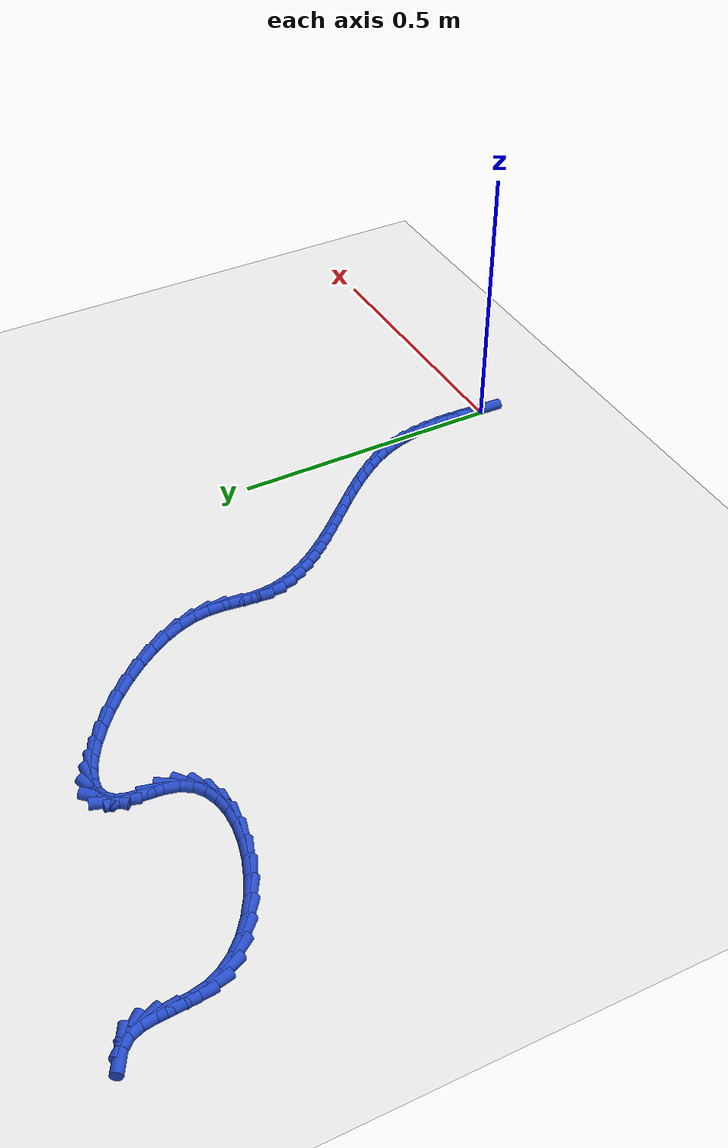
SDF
<sdf version="1.6">
 <world name="default">
  <model name="ground_plane">
   <static>1</static>
   <link name="link">
    <collision name="collision">
     <geometry><plane><normal>0 0 1</normal><size>100 100</size></plane></geometry>
     <surface><friction><ode><mu>100</mu><mu2>50</mu2></ode></friction></surface>
    </collision>
    <visual name="visual">
     <cast_shadows>0</cast_shadows>
     <geometry><plane><normal>0 0 1</normal><size>100 100</size></plane></geometry>
     <material>
      <script><uri>file://media/materials/scripts/gazebo.material</uri><name>Gazebo/WhiteGlow</name></script>
     </material>
    </visual>
   </link>
  </model>
  <model name="line">
   <link name="link_1">
    <pose>0.0008602382238164219 0.026881069521772712 0.01 0 1.57 1.555280281965907</pose>
    <collision name="collision">
     <geometry><cylinder><radius>0.01</radius><length>0.08</length></cylinder></geometry>
    </collision>
    <visual name="visual">
     <material>
      <script><name>Gazebo/Blue</name><uri>file://media/materials/scripts/gazebo.material</uri></script>
     </material>
     <geometry><cylinder><radius>0.01</radius><length>0.08</length></cylinder></geometry>
    </visual>
   </link>
   <link name="link_2">
    <pose>0.0012765417662471824 0.05370943580001605 0.01 0 1.57 -1.5594066172251986</pose>
    <collision name="collision">
     <geometry><cylinder><radius>0.01</radius><length>0.08</length></cylinder></geometry>
    </collision>
    <visual name="visual">
     <material>
      <script><name>Gazebo/Blue</name><uri>file://media/materials/scripts/gazebo.material</uri></script>
     </material>
     <geometry><cylinder><radius>0.01</radius><length>0.08</length></cylinder></geometry>
    </visual>
   </link>
   <link name="link_3">
    <pose>0.0009725065992423122 0.08040212870797271 0.01 0 1.57 -1.5217017346855326</pose>
    <collision name="collision">
     <geometry><cylinder><radius>0.01</radius><length>0.08</length></cylinder></geometry>
    </collision>
    <visual name="visual">
     <material>
      <script><name>Gazebo/Blue</name><uri>file://media/materials/scripts/gazebo.material</uri></script>
     </material>
     <geometry><cylinder><radius>0.01</radius><length>0.08</length></cylinder></geometry>
    </visual>
   </link>
   <link name="link_4">
    <pose>-0.00032827130524816115 0.10687617811888533 0.01 0 1.57 -1.4727666887338848</pose>
    <collision name="collision">
     <geometry><cylinder><radius>0.01</radius><length>0.08</length></cylinder></geometry>
    </collision>
    <visual name="visual">
     <material>
      <script><name>Gazebo/Blue</name><uri>file://media/materials/scripts/gazebo.material</uri></script>
     </material>
     <geometry><cylinder><radius>0.01</radius><length>0.08</length></cylinder></geometry>
    </visual>
   </link>
   <link name="link_5">
    <pose>-0.0029021959752742127 0.13304861390599657 0.01 0 1.57 -1.4122386485645877</pose>
    <collision name="collision">
     <geometry><cylinder><radius>0.01</radius><length>0.08</length></cylinder></geometry>
    </collision>
    <visual name="visual">
     <material>
      <script><name>Gazebo/Blue</name><uri>file://media/materials/scripts/gazebo.material</uri></script>
     </material>
     <geometry><cylinder><radius>0.01</radius><length>0.08</length></cylinder></geometry>
    </visual>
   </link>
   <link name="link_6">
    <pose>-0.007025671438885812 0.1588364659425492 0.01 0 1.57 -1.3400157972310693</pose>
    <collision name="collision">
     <geometry><cylinder><radius>0.01</radius><length>0.08</length></cylinder></geometry>
    </collision>
    <visual name="visual">
     <material>
      <script><name>Gazebo/Blue</name><uri>file://media/materials/scripts/gazebo.material</uri></script>
     </material>
     <geometry><cylinder><radius>0.01</radius><length>0.08</length></cylinder></geometry>
    </visual>
   </link>
   <link name="link_7">
    <pose>-0.012975101724132937 0.18415676410178572 0.01 0 1.57 -1.2565055473029294</pose>
    <collision name="collision">
     <geometry><cylinder><radius>0.01</radius><length>0.08</length></cylinder></geometry>
    </collision>
    <visual name="visual">
     <material>
      <script><name>Gazebo/Blue</name><uri>file://media/materials/scripts/gazebo.material</uri></script>
     </material>
     <geometry><cylinder><radius>0.01</radius><length>0.08</length></cylinder></geometry>
    </visual>
   </link>
   <link name="link_8">
    <pose>-0.02102689085906555 0.2089265382569489 0.01 0 1.57 -1.1645421362590962</pose>
    <collision name="collision">
     <geometry><cylinder><radius>0.01</radius><length>0.08</length></cylinder></geometry>
    </collision>
    <visual name="visual">
     <material>
      <script><name>Gazebo/Blue</name><uri>file://media/materials/scripts/gazebo.material</uri></script>
     </material>
     <geometry><cylinder><radius>0.01</radius><length>0.08</length></cylinder></geometry>
    </visual>
   </link>
   <link name="link_9">
    <pose>-0.03141463552067935 0.23307369433146488 0.01 0 1.57 -1.0798703875557212</pose>
    <collision name="collision">
     <geometry><cylinder><radius>0.01</radius><length>0.08</length></cylinder></geometry>
    </collision>
    <visual name="visual">
     <material>
      <script><name>Gazebo/Blue</name><uri>file://media/materials/scripts/gazebo.material</uri></script>
     </material>
     <geometry><cylinder><radius>0.01</radius><length>0.08</length></cylinder></geometry>
    </visual>
   </link>
   <link name="link_10">
    <pose>-0.044002037707681595 0.2566201172730296 0.01 0 1.57 -1.0098060208252468</pose>
    <collision name="collision">
     <geometry><cylinder><radius>0.01</radius><length>0.08</length></cylinder></geometry>
    </collision>
    <visual name="visual">
     <material>
      <script><name>Gazebo/Blue</name><uri>file://media/materials/scripts/gazebo.material</uri></script>
     </material>
     <geometry><cylinder><radius>0.01</radius><length>0.08</length></cylinder></geometry>
    </visual>
   </link>
   <link name="link_11">
    <pose>-0.05846347635207173 0.27963579328119625 0.01 0 1.57 -0.9535656398321232</pose>
    <collision name="collision">
     <geometry><cylinder><radius>0.01</radius><length>0.08</length></cylinder></geometry>
    </collision>
    <visual name="visual">
     <material>
      <script><name>Gazebo/Blue</name><uri>file://media/materials/scripts/gazebo.material</uri></script>
     </material>
     <geometry><cylinder><radius>0.01</radius><length>0.08</length></cylinder></geometry>
    </visual>
   </link>
   <link name="link_12">
    <pose>-0.07447179924027313 0.3021910975731917 0.01 0 1.57 -0.9100801353350306</pose>
    <collision name="collision">
     <geometry><cylinder><radius>0.01</radius><length>0.08</length></cylinder></geometry>
    </collision>
    <visual name="visual">
     <material>
      <script><name>Gazebo/Blue</name><uri>file://media/materials/scripts/gazebo.material</uri></script>
     </material>
     <geometry><cylinder><radius>0.01</radius><length>0.08</length></cylinder></geometry>
    </visual>
   </link>
   <link name="link_13">
    <pose>-0.09169985415870918 0.3243564053662428 0.01 0 1.57 -0.8783344374496111</pose>
    <collision name="collision">
     <geometry><cylinder><radius>0.01</radius><length>0.08</length></cylinder></geometry>
    </collision>
    <visual name="visual">
     <material>
      <script><name>Gazebo/Blue</name><uri>file://media/materials/scripts/gazebo.material</uri></script>
     </material>
     <geometry><cylinder><radius>0.01</radius><length>0.08</length></cylinder></geometry>
    </visual>
   </link>
   <link name="link_14">
    <pose>-0.10982048889380337 0.3462020918775764 0.01 0 1.57 -0.8575220311940084</pose>
    <collision name="collision">
     <geometry><cylinder><radius>0.01</radius><length>0.08</length></cylinder></geometry>
    </collision>
    <visual name="visual">
     <material>
      <script><name>Gazebo/Blue</name><uri>file://media/materials/scripts/gazebo.material</uri></script>
     </material>
     <geometry><cylinder><radius>0.01</radius><length>0.08</length></cylinder></geometry>
    </visual>
   </link>
   <link name="link_15">
    <pose>-0.12850655123197896 0.3677985323244192 0.01 0 1.57 -0.8471221855984722</pose>
    <collision name="collision">
     <geometry><cylinder><radius>0.01</radius><length>0.08</length></cylinder></geometry>
    </collision>
    <visual name="visual">
     <material>
      <script><name>Gazebo/Blue</name><uri>file://media/materials/scripts/gazebo.material</uri></script>
     </material>
     <geometry><cylinder><radius>0.01</radius><length>0.08</length></cylinder></geometry>
    </visual>
   </link>
   <link name="link_16">
    <pose>-0.14743088895965947 0.3892161019239984 0.01 0 1.57 -0.8469380375574095</pose>
    <collision name="collision">
     <geometry><cylinder><radius>0.01</radius><length>0.08</length></cylinder></geometry>
    </collision>
    <visual name="visual">
     <material>
      <script><name>Gazebo/Blue</name><uri>file://media/materials/scripts/gazebo.material</uri></script>
     </material>
     <geometry><cylinder><radius>0.01</radius><length>0.08</length></cylinder></geometry>
    </visual>
   </link>
   <link name="link_17">
    <pose>-0.16626634986326816 0.41052517589354054 0.01 0 1.57 -0.8571190771359826</pose>
    <collision name="collision">
     <geometry><cylinder><radius>0.01</radius><length>0.08</length></cylinder></geometry>
    </collision>
    <visual name="visual">
     <material>
      <script><name>Gazebo/Blue</name><uri>file://media/materials/scripts/gazebo.material</uri></script>
     </material>
     <geometry><cylinder><radius>0.01</radius><length>0.08</length></cylinder></geometry>
    </visual>
   </link>
   <link name="link_18">
    <pose>-0.1846857817292285 0.4317961294502726 0.01 0 1.57 -0.8781789403414201</pose>
    <collision name="collision">
     <geometry><cylinder><radius>0.01</radius><length>0.08</length></cylinder></geometry>
    </collision>
    <visual name="visual">
     <material>
      <script><name>Gazebo/Blue</name><uri>file://media/materials/scripts/gazebo.material</uri></script>
     </material>
     <geometry><cylinder><radius>0.01</radius><length>0.08</length></cylinder></geometry>
    </visual>
   </link>
   <link name="link_19">
    <pose>-0.2023620323439639 0.4530993378114214 0.01 0 1.57 -0.9110080031985364</pose>
    <collision name="collision">
     <geometry><cylinder><radius>0.01</radius><length>0.08</length></cylinder></geometry>
    </collision>
    <visual name="visual">
     <material>
      <script><name>Gazebo/Blue</name><uri>file://media/materials/scripts/gazebo.material</uri></script>
     </material>
     <geometry><cylinder><radius>0.01</radius><length>0.08</length></cylinder></geometry>
    </visual>
   </link>
   <link name="link_20">
    <pose>-0.21896794949389778 0.4745051761942138 0.01 0 1.57 -0.956866595205126</pose>
    <collision name="collision">
     <geometry><cylinder><radius>0.01</radius><length>0.08</length></cylinder></geometry>
    </collision>
    <visual name="visual">
     <material>
      <script><name>Gazebo/Blue</name><uri>file://media/materials/scripts/gazebo.material</uri></script>
     </material>
     <geometry><cylinder><radius>0.01</radius><length>0.08</length></cylinder></geometry>
    </visual>
   </link>
   <link name="link_21">
    <pose>-0.23417638096545348 0.49608401981587663 0.01 0 1.57 -1.0173241911575848</pose>
    <collision name="collision">
     <geometry><cylinder><radius>0.01</radius><length>0.08</length></cylinder></geometry>
    </collision>
    <visual name="visual">
     <material>
      <script><name>Gazebo/Blue</name><uri>file://media/materials/scripts/gazebo.material</uri></script>
     </material>
     <geometry><cylinder><radius>0.01</radius><length>0.08</length></cylinder></geometry>
    </visual>
   </link>
   <link name="link_22">
    <pose>-0.2476601745450544 0.5179062438936368 0.01 0 1.57 -1.0940798855237008</pose>
    <collision name="collision">
     <geometry><cylinder><radius>0.01</radius><length>0.08</length></cylinder></geometry>
    </collision>
    <visual name="visual">
     <material>
      <script><name>Gazebo/Blue</name><uri>file://media/materials/scripts/gazebo.material</uri></script>
     </material>
     <geometry><cylinder><radius>0.01</radius><length>0.08</length></cylinder></geometry>
    </visual>
   </link>
   <link name="link_23">
    <pose>-0.25909217801912393 0.540042223644721 0.01 0 1.57 -1.1885678932676573</pose>
    <collision name="collision">
     <geometry><cylinder><radius>0.01</radius><length>0.08</length></cylinder></geometry>
    </collision>
    <visual name="visual">
     <material>
      <script><name>Gazebo/Blue</name><uri>file://media/materials/scripts/gazebo.material</uri></script>
     </material>
     <geometry><cylinder><radius>0.01</radius><length>0.08</length></cylinder></geometry>
    </visual>
   </link>
   <link name="link_24">
    <pose>-0.2681452391740855 0.5625623342863563 0.01 0 1.57 -1.3012591221665977</pose>
    <collision name="collision">
     <geometry><cylinder><radius>0.01</radius><length>0.08</length></cylinder></geometry>
    </collision>
    <visual name="visual">
     <material>
      <script><name>Gazebo/Blue</name><uri>file://media/materials/scripts/gazebo.material</uri></script>
     </material>
     <geometry><cylinder><radius>0.01</radius><length>0.08</length></cylinder></geometry>
    </visual>
   </link>
   <link name="link_25">
    <pose>-0.2744922057963625 0.5855369510357694 0.01 0 1.57 -1.430707616379331</pose>
    <collision name="collision">
     <geometry><cylinder><radius>0.01</radius><length>0.08</length></cylinder></geometry>
    </collision>
    <visual name="visual">
     <material>
      <script><name>Gazebo/Blue</name><uri>file://media/materials/scripts/gazebo.material</uri></script>
     </material>
     <geometry><cylinder><radius>0.01</radius><length>0.08</length></cylinder></geometry>
    </visual>
   </link>
   <link name="link_26">
    <pose>-0.2778059256723784 0.6090364491101872 0.01 0 1.57 1.5697017489471845</pose>
    <collision name="collision">
     <geometry><cylinder><radius>0.01</radius><length>0.08</length></cylinder></geometry>
    </collision>
    <visual name="visual">
     <material>
      <script><name>Gazebo/Blue</name><uri>file://media/materials/scripts/gazebo.material</uri></script>
     </material>
     <geometry><cylinder><radius>0.01</radius><length>0.08</length></cylinder></geometry>
    </visual>
   </link>
   <link name="link_27">
    <pose>-0.27777955023668754 0.6331328852042409 0.01 0 1.57 1.4655885360845564</pose>
    <collision name="collision">
     <geometry><cylinder><radius>0.01</radius><length>0.08</length></cylinder></geometry>
    </collision>
    <visual name="visual">
     <material>
      <script><name>Gazebo/Blue</name><uri>file://media/materials/scripts/gazebo.material</uri></script>
     </material>
     <geometry><cylinder><radius>0.01</radius><length>0.08</length></cylinder></geometry>
    </visual>
   </link>
   <link name="link_28">
    <pose>-0.27515520449582265 0.6579851883493859 0.01 0 1.57 1.4575594987357618</pose>
    <collision name="collision">
     <geometry><cylinder><radius>0.01</radius><length>0.08</length></cylinder></geometry>
    </collision>
    <visual name="visual">
     <material>
      <script><name>Gazebo/Blue</name><uri>file://media/materials/scripts/gazebo.material</uri></script>
     </material>
     <geometry><cylinder><radius>0.01</radius><length>0.08</length></cylinder></geometry>
    </visual>
   </link>
   <link name="link_29">
    <pose>-0.2722104236843385 0.6838794449031096 0.01 0 1.57 1.5390198521601992</pose>
    <collision name="collision">
     <geometry><cylinder><radius>0.01</radius><length>0.08</length></cylinder></geometry>
    </collision>
    <visual name="visual">
     <material>
      <script><name>Gazebo/Blue</name><uri>file://media/materials/scripts/gazebo.material</uri></script>
     </material>
     <geometry><cylinder><radius>0.01</radius><length>0.08</length></cylinder></geometry>
    </visual>
   </link>
   <link name="link_30">
    <pose>-0.27134478253625693 0.7111118481090848 0.01 0 1.57 -1.4479750863037877</pose>
    <collision name="collision">
     <geometry><cylinder><radius>0.01</radius><length>0.08</length></cylinder></geometry>
    </collision>
    <visual name="visual">
     <material>
      <script><name>Gazebo/Blue</name><uri>file://media/materials/scripts/gazebo.material</uri></script>
     </material>
     <geometry><cylinder><radius>0.01</radius><length>0.08</length></cylinder></geometry>
    </visual>
   </link>
   <link name="link_31">
    <pose>-0.2749063172573327 0.7399636006172671 0.01 0 1.57 -1.284787435527426</pose>
    <collision name="collision">
     <geometry><cylinder><radius>0.01</radius><length>0.08</length></cylinder></geometry>
    </collision>
    <visual name="visual">
     <material>
      <script><name>Gazebo/Blue</name><uri>file://media/materials/scripts/gazebo.material</uri></script>
     </material>
     <geometry><cylinder><radius>0.01</radius><length>0.08</length></cylinder></geometry>
    </visual>
   </link>
   <link name="link_32">
    <pose>-0.2838287158932044 0.7703045250992601 0.01 0 1.57 -1.1586155722646712</pose>
    <collision name="collision">
     <geometry><cylinder><radius>0.01</radius><length>0.08</length></cylinder></geometry>
    </collision>
    <visual name="visual">
     <material>
      <script><name>Gazebo/Blue</name><uri>file://media/materials/scripts/gazebo.material</uri></script>
     </material>
     <geometry><cylinder><radius>0.01</radius><length>0.08</length></cylinder></geometry>
    </visual>
   </link>
   <link name="link_33">
    <pose>-0.2974910525555914 0.8015522662803035 0.01 0 1.57 -1.0594826240917112</pose>
    <collision name="collision">
     <geometry><cylinder><radius>0.01</radius><length>0.08</length></cylinder></geometry>
    </collision>
    <visual name="visual">
     <material>
      <script><name>Gazebo/Blue</name><uri>file://media/materials/scripts/gazebo.material</uri></script>
     </material>
     <geometry><cylinder><radius>0.01</radius><length>0.08</length></cylinder></geometry>
    </visual>
   </link>
   <link name="link_34">
    <pose>-0.3151927310190291 0.833101295820823 0.01 0 1.57 -0.9781426358637528</pose>
    <collision name="collision">
     <geometry><cylinder><radius>0.01</radius><length>0.08</length></cylinder></geometry>
    </collision>
    <visual name="visual">
     <material>
      <script><name>Gazebo/Blue</name><uri>file://media/materials/scripts/gazebo.material</uri></script>
     </material>
     <geometry><cylinder><radius>0.01</radius><length>0.08</length></cylinder></geometry>
    </visual>
   </link>
   <link name="link_35">
    <pose>-0.3362331550580526 0.8643460853812431 0.01 0 1.57 -0.9080164408060608</pose>
    <collision name="collision">
     <geometry><cylinder><radius>0.01</radius><length>0.08</length></cylinder></geometry>
    </collision>
    <visual name="visual">
     <material>
      <script><name>Gazebo/Blue</name><uri>file://media/materials/scripts/gazebo.material</uri></script>
     </material>
     <geometry><cylinder><radius>0.01</radius><length>0.08</length></cylinder></geometry>
    </visual>
   </link>
   <link name="link_36">
    <pose>-0.35991172844719765 0.8946811066219895 0.01 0 1.57 -0.8441812483351085</pose>
    <collision name="collision">
     <geometry><cylinder><radius>0.01</radius><length>0.08</length></cylinder></geometry>
    </collision>
    <visual name="visual">
     <material>
      <script><name>Gazebo/Blue</name><uri>file://media/materials/scripts/gazebo.material</uri></script>
     </material>
     <geometry><cylinder><radius>0.01</radius><length>0.08</length></cylinder></geometry>
    </visual>
   </link>
   <link name="link_37">
    <pose>-0.38552785496099934 0.9235008312034867 0.01 0 1.57 -0.7825190281037797</pose>
    <collision name="collision">
     <geometry><cylinder><radius>0.01</radius><length>0.08</length></cylinder></geometry>
    </collision>
    <visual name="visual">
     <material>
      <script><name>Gazebo/Blue</name><uri>file://media/materials/scripts/gazebo.material</uri></script>
     </material>
     <geometry><cylinder><radius>0.01</radius><length>0.08</length></cylinder></geometry>
    </visual>
   </link>
   <link name="link_38">
    <pose>-0.41238093837399276 0.9501997307861596 0.01 0 1.57 -0.7189702375862949</pose>
    <collision name="collision">
     <geometry><cylinder><radius>0.01</radius><length>0.08</length></cylinder></geometry>
    </collision>
    <visual name="visual">
     <material>
      <script><name>Gazebo/Blue</name><uri>file://media/materials/scripts/gazebo.material</uri></script>
     </material>
     <geometry><cylinder><radius>0.01</radius><length>0.08</length></cylinder></geometry>
    </visual>
   </link>
   <link name="link_39">
    <pose>-0.43977038246071365 0.9741722770304336 0.01 0 1.57 -0.6486937677539889</pose>
    <collision name="collision">
     <geometry><cylinder><radius>0.01</radius><length>0.08</length></cylinder></geometry>
    </collision>
    <visual name="visual">
     <material>
      <script><name>Gazebo/Blue</name><uri>file://media/materials/scripts/gazebo.material</uri></script>
     </material>
     <geometry><cylinder><radius>0.01</radius><length>0.08</length></cylinder></geometry>
    </visual>
   </link>
   <link name="link_40">
    <pose>-0.4669955909956972 0.9948129415967332 0.01 0 1.57 -0.5647954215797691</pose>
    <collision name="collision">
     <geometry><cylinder><radius>0.01</radius><length>0.08</length></cylinder></geometry>
    </collision>
    <visual name="visual">
     <material>
      <script><name>Gazebo/Blue</name><uri>file://media/materials/scripts/gazebo.material</uri></script>
     </material>
     <geometry><cylinder><radius>0.01</radius><length>0.08</length></cylinder></geometry>
    </visual>
   </link>
   <link name="link_41">
    <pose>-0.4933559677534789 1.0115161961454842 0.01 0 1.57 -0.45596654985331564</pose>
    <collision name="collision">
     <geometry><cylinder><radius>0.01</radius><length>0.08</length></cylinder></geometry>
    </collision>
    <visual name="visual">
     <material>
      <script><name>Gazebo/Blue</name><uri>file://media/materials/scripts/gazebo.material</uri></script>
     </material>
     <geometry><cylinder><radius>0.01</radius><length>0.08</length></cylinder></geometry>
    </visual>
   </link>
   <link name="link_42">
    <pose>-0.5181509165085937 1.0236765123371103 0.01 0 1.57 -0.30173441285185754</pose>
    <collision name="collision">
     <geometry><cylinder><radius>0.01</radius><length>0.08</length></cylinder></geometry>
    </collision>
    <visual name="visual">
     <material>
      <script><name>Gazebo/Blue</name><uri>file://media/materials/scripts/gazebo.material</uri></script>
     </material>
     <geometry><cylinder><radius>0.01</radius><length>0.08</length></cylinder></geometry>
    </visual>
   </link>
   <link name="link_43">
    <pose>-0.5406798410355771 1.030688361832038 0.01 0 1.57 -0.06421151707830641</pose>
    <collision name="collision">
     <geometry><cylinder><radius>0.01</radius><length>0.08</length></cylinder></geometry>
    </collision>
    <visual name="visual">
     <material>
      <script><name>Gazebo/Blue</name><uri>file://media/materials/scripts/gazebo.material</uri></script>
     </material>
     <geometry><cylinder><radius>0.01</radius><length>0.08</length></cylinder></geometry>
    </visual>
   </link>
   <link name="link_44">
    <pose>-0.5602421451089649 1.0319462162906912 0.01 0 1.57 0.3105724833566927</pose>
    <collision name="collision">
     <geometry><cylinder><radius>0.01</radius><length>0.08</length></cylinder></geometry>
    </collision>
    <visual name="visual">
     <material>
      <script><name>Gazebo/Blue</name><uri>file://media/materials/scripts/gazebo.material</uri></script>
     </material>
     <geometry><cylinder><radius>0.01</radius><length>0.08</length></cylinder></geometry>
    </visual>
   </link>
   <link name="link_45">
    <pose>-0.5761372325032915 1.0268445473734953 0.01 0 1.57 0.8082578855928715</pose>
    <collision name="collision">
     <geometry><cylinder><radius>0.01</radius><length>0.08</length></cylinder></geometry>
    </collision>
    <visual name="visual">
     <material>
      <script><name>Gazebo/Blue</name><uri>file://media/materials/scripts/gazebo.material</uri></script>
     </material>
     <geometry><cylinder><radius>0.01</radius><length>0.08</length></cylinder></geometry>
    </visual>
   </link>
   <link name="link_46">
    <pose>-0.587664506993093 1.0147778267408754 0.01 0 1.57 1.2511273171537673</pose>
    <collision name="collision">
     <geometry><cylinder><radius>0.01</radius><length>0.08</length></cylinder></geometry>
    </collision>
    <visual name="visual">
     <material>
      <script><name>Gazebo/Blue</name><uri>file://media/materials/scripts/gazebo.material</uri></script>
     </material>
     <geometry><cylinder><radius>0.01</radius><length>0.08</length></cylinder></geometry>
    </visual>
   </link>
   <link name="link_47">
    <pose>-0.5941539093810425 0.9951736907397626 0.01 0 1.57 1.4724106238253665</pose>
    <collision name="collision">
     <geometry><cylinder><radius>0.01</radius><length>0.08</length></cylinder></geometry>
    </collision>
    <visual name="visual">
     <material>
      <script><name>Gazebo/Blue</name><uri>file://media/materials/scripts/gazebo.material</uri></script>
     </material>
     <geometry><cylinder><radius>0.01</radius><length>0.08</length></cylinder></geometry>
    </visual>
   </link>
   <link name="link_48">
    <pose>-0.5967002087760224 0.9693764644416092 0.01 0 1.57 1.4845858687058333</pose>
    <collision name="collision">
     <geometry><cylinder><radius>0.01</radius><length>0.08</length></cylinder></geometry>
    </collision>
    <visual name="visual">
     <material>
      <script><name>Gazebo/Blue</name><uri>file://media/materials/scripts/gazebo.material</uri></script>
     </material>
     <geometry><cylinder><radius>0.01</radius><length>0.08</length></cylinder></geometry>
    </visual>
   </link>
   <link name="link_49">
    <pose>-0.5990955950050688 0.9416600020157336 0.01 0 1.57 1.3266898506333262</pose>
    <collision name="collision">
     <geometry><cylinder><radius>0.01</radius><length>0.08</length></cylinder></geometry>
    </collision>
    <visual name="visual">
     <material>
      <script><name>Gazebo/Blue</name><uri>file://media/materials/scripts/gazebo.material</uri></script>
     </material>
     <geometry><cylinder><radius>0.01</radius><length>0.08</length></cylinder></geometry>
    </visual>
   </link>
   <link name="link_50">
    <pose>-0.6053527218246342 0.9165383943744848 0.01 0 1.57 0.9913973601568804</pose>
    <collision name="collision">
     <geometry><cylinder><radius>0.01</radius><length>0.08</length></cylinder></geometry>
    </collision>
    <visual name="visual">
     <material>
      <script><name>Gazebo/Blue</name><uri>file://media/materials/scripts/gazebo.material</uri></script>
     </material>
     <geometry><cylinder><radius>0.01</radius><length>0.08</length></cylinder></geometry>
    </visual>
   </link>
   <link name="link_51">
    <pose>-0.618051778355256 0.8971300693585369 0.01 0 1.57 0.6338707553406878</pose>
    <collision name="collision">
     <geometry><cylinder><radius>0.01</radius><length>0.08</length></cylinder></geometry>
    </collision>
    <visual name="visual">
     <material>
      <script><name>Gazebo/Blue</name><uri>file://media/materials/scripts/gazebo.material</uri></script>
     </material>
     <geometry><cylinder><radius>0.01</radius><length>0.08</length></cylinder></geometry>
    </visual>
   </link>
   <link name="link_52">
    <pose>-0.6366198877525914 0.8834813945151316 0.01 0 1.57 0.3384382736156258</pose>
    <collision name="collision">
     <geometry><cylinder><radius>0.01</radius><length>0.08</length></cylinder></geometry>
    </collision>
    <visual name="visual">
     <material>
      <script><name>Gazebo/Blue</name><uri>file://media/materials/scripts/gazebo.material</uri></script>
     </material>
     <geometry><cylinder><radius>0.01</radius><length>0.08</length></cylinder></geometry>
    </visual>
   </link>
   <link name="link_53">
    <pose>-0.6600641210204116 0.8752294768332636 0.01 0 1.57 0.1172192615195012</pose>
    <collision name="collision">
     <geometry><cylinder><radius>0.01</radius><length>0.08</length></cylinder></geometry>
    </collision>
    <visual name="visual">
     <material>
      <script><name>Gazebo/Blue</name><uri>file://media/materials/scripts/gazebo.material</uri></script>
     </material>
     <geometry><cylinder><radius>0.01</radius><length>0.08</length></cylinder></geometry>
    </visual>
   </link>
   <link name="link_54">
    <pose>-0.687391549162489 0.8720114233019286 0.01 0 1.57 -0.048044682563276875</pose>
    <collision name="collision">
     <geometry><cylinder><radius>0.01</radius><length>0.08</length></cylinder></geometry>
    </collision>
    <visual name="visual">
     <material>
      <script><name>Gazebo/Blue</name><uri>file://media/materials/scripts/gazebo.material</uri></script>
     </material>
     <geometry><cylinder><radius>0.01</radius><length>0.08</length></cylinder></geometry>
    </visual>
   </link>
   <link name="link_55">
    <pose>-0.717609243182596 0.8734643409101216 0.01 0 1.57 -0.17749840947637263</pose>
    <collision name="collision">
     <geometry><cylinder><radius>0.01</radius><length>0.08</length></cylinder></geometry>
    </collision>
    <visual name="visual">
     <material>
      <script><name>Gazebo/Blue</name><uri>file://media/materials/scripts/gazebo.material</uri></script>
     </material>
     <geometry><cylinder><radius>0.01</radius><length>0.08</length></cylinder></geometry>
    </visual>
   </link>
   <link name="link_56">
    <pose>-0.7497242740845045 0.8792253366468377 0.01 0 1.57 -0.2859003919538598</pose>
    <collision name="collision">
     <geometry><cylinder><radius>0.01</radius><length>0.08</length></cylinder></geometry>
    </collision>
    <visual name="visual">
     <material>
      <script><name>Gazebo/Blue</name><uri>file://media/materials/scripts/gazebo.material</uri></script>
     </material>
     <geometry><cylinder><radius>0.01</radius><length>0.08</length></cylinder></geometry>
    </visual>
   </link>
   <link name="link_57">
    <pose>-0.7827437128719864 0.8889315175010721 0.01 0 1.57 -0.38354210900078095</pose>
    <collision name="collision">
     <geometry><cylinder><radius>0.01</radius><length>0.08</length></cylinder></geometry>
    </collision>
    <visual name="visual">
     <material>
      <script><name>Gazebo/Blue</name><uri>file://media/materials/scripts/gazebo.material</uri></script>
     </material>
     <geometry><cylinder><radius>0.01</radius><length>0.08</length></cylinder></geometry>
    </visual>
   </link>
   <link name="link_58">
    <pose>-0.8156746305488141 0.9022199904618203 0.01 0 1.57 -0.4781874516379408</pose>
    <collision name="collision">
     <geometry><cylinder><radius>0.01</radius><length>0.08</length></cylinder></geometry>
    </collision>
    <visual name="visual">
     <material>
      <script><name>Gazebo/Blue</name><uri>file://media/materials/scripts/gazebo.material</uri></script>
     </material>
     <geometry><cylinder><radius>0.01</radius><length>0.08</length></cylinder></geometry>
    </visual>
   </link>
   <link name="link_59">
    <pose>-0.8475240981187592 0.918727862518077 0.01 0 1.57 -0.5766247520935476</pose>
    <collision name="collision">
     <geometry><cylinder><radius>0.01</radius><length>0.08</length></cylinder></geometry>
    </collision>
    <visual name="visual">
     <material>
      <script><name>Gazebo/Blue</name><uri>file://media/materials/scripts/gazebo.material</uri></script>
     </material>
     <geometry><cylinder><radius>0.01</radius><length>0.08</length></cylinder></geometry>
    </visual>
   </link>
   <link name="link_60">
    <pose>-0.8772991865855945 0.9380922406588379 0.01 0 1.57 -0.6858678982872373</pose>
    <collision name="collision">
     <geometry><cylinder><radius>0.01</radius><length>0.08</length></cylinder></geometry>
    </collision>
    <visual name="visual">
     <material>
      <script><name>Gazebo/Blue</name><uri>file://media/materials/scripts/gazebo.material</uri></script>
     </material>
     <geometry><cylinder><radius>0.01</radius><length>0.08</length></cylinder></geometry>
    </visual>
   </link>
   <link name="link_61">
    <pose>-0.9040069669530918 0.9599502318730978 0.01 0 1.57 -0.8141482951205399</pose>
    <collision name="collision">
     <geometry><cylinder><radius>0.01</radius><length>0.08</length></cylinder></geometry>
    </collision>
    <visual name="visual">
     <material>
      <script><name>Gazebo/Blue</name><uri>file://media/materials/scripts/gazebo.material</uri></script>
     </material>
     <geometry><cylinder><radius>0.01</radius><length>0.08</length></cylinder></geometry>
    </visual>
   </link>
   <link name="link_62">
    <pose>-0.926654510225023 0.9839389431498518 0.01 0 1.57 -0.9715006474244978</pose>
    <collision name="collision">
     <geometry><cylinder><radius>0.01</radius><length>0.08</length></cylinder></geometry>
    </collision>
    <visual name="visual">
     <material>
      <script><name>Gazebo/Blue</name><uri>file://media/materials/scripts/gazebo.material</uri></script>
     </material>
     <geometry><cylinder><radius>0.01</radius><length>0.08</length></cylinder></geometry>
    </visual>
   </link>
   <link name="link_63">
    <pose>-0.9442488874051604 1.0096954814780954 0.01 0 1.57 -1.1686511473507128</pose>
    <collision name="collision">
     <geometry><cylinder><radius>0.01</radius><length>0.08</length></cylinder></geometry>
    </collision>
    <visual name="visual">
     <material>
      <script><name>Gazebo/Blue</name><uri>file://media/materials/scripts/gazebo.material</uri></script>
     </material>
     <geometry><cylinder><radius>0.01</radius><length>0.08</length></cylinder></geometry>
    </visual>
   </link>
   <link name="link_64">
    <pose>-0.9558009994639148 1.0368562055137212 0.01 0 1.57 -1.3749422259213553</pose>
    <collision name="collision">
     <geometry><cylinder><radius>0.01</radius><length>0.08</length></cylinder></geometry>
    </collision>
    <visual name="visual">
     <material>
      <script><name>Gazebo/Blue</name><uri>file://media/materials/scripts/gazebo.material</uri></script>
     </material>
     <geometry><cylinder><radius>0.01</radius><length>0.08</length></cylinder></geometry>
    </visual>
   </link>
   <link name="link_65">
    <pose>-0.9613559659750638 1.0648553990411243 0.01 0 1.57 -1.4978799357225159</pose>
    <collision name="collision">
     <geometry><cylinder><radius>0.01</radius><length>0.08</length></cylinder></geometry>
    </collision>
    <visual name="visual">
     <material>
      <script><name>Gazebo/Blue</name><uri>file://media/materials/scripts/gazebo.material</uri></script>
     </material>
     <geometry><cylinder><radius>0.01</radius><length>0.08</length></cylinder></geometry>
    </visual>
   </link>
   <link name="link_66">
    <pose>-0.9633864685604215 1.0926530270814234 0.01 0 1.57 -1.5207536580775673</pose>
    <collision name="collision">
     <geometry><cylinder><radius>0.01</radius><length>0.08</length></cylinder></geometry>
    </collision>
    <visual name="visual">
     <material>
      <script><name>Gazebo/Blue</name><uri>file://media/materials/scripts/gazebo.material</uri></script>
     </material>
     <geometry><cylinder><radius>0.01</radius><length>0.08</length></cylinder></geometry>
    </visual>
   </link>
   <link name="link_67">
    <pose>-0.9647131087710531 1.1191410749512856 0.01 0 1.57 -1.428706162045194</pose>
    <collision name="collision">
     <geometry><cylinder><radius>0.01</radius><length>0.08</length></cylinder></geometry>
    </collision>
    <visual name="visual">
     <material>
      <script><name>Gazebo/Blue</name><uri>file://media/materials/scripts/gazebo.material</uri></script>
     </material>
     <geometry><cylinder><radius>0.01</radius><length>0.08</length></cylinder></geometry>
    </visual>
   </link>
   <link name="link_68">
    <pose>-0.9681564881580238 1.1432115279673774 0.01 0 1.57 -1.1849644542502096</pose>
    <collision name="collision">
     <geometry><cylinder><radius>0.01</radius><length>0.08</length></cylinder></geometry>
    </collision>
    <visual name="visual">
     <material>
      <script><name>Gazebo/Blue</name><uri>file://media/materials/scripts/gazebo.material</uri></script>
     </material>
     <geometry><cylinder><radius>0.01</radius><length>0.08</length></cylinder></geometry>
    </visual>
   </link>
   <link name="link_69">
    <pose>-0.976505747035601 1.1637665441024576 0.01 0 1.57 -0.8460024315804001</pose>
    <collision name="collision">
     <geometry><cylinder><radius>0.01</radius><length>0.08</length></cylinder></geometry>
    </collision>
    <visual name="visual">
     <material>
      <script><name>Gazebo/Blue</name><uri>file://media/materials/scripts/gazebo.material</uri></script>
     </material>
     <geometry><cylinder><radius>0.01</radius><length>0.08</length></cylinder></geometry>
    </visual>
   </link>
   <link name="link_70">
    <pose>-0.9910523636938523 1.180192534405879 0.01 0 1.57 -0.5558084752771331</pose>
    <collision name="collision">
     <geometry><cylinder><radius>0.01</radius><length>0.08</length></cylinder></geometry>
    </collision>
    <visual name="visual">
     <material>
      <script><name>Gazebo/Blue</name><uri>file://media/materials/scripts/gazebo.material</uri></script>
     </material>
     <geometry><cylinder><radius>0.01</radius><length>0.08</length></cylinder></geometry>
    </visual>
   </link>
   <link name="link_290">
    <pose>7.26415455565288e-18 2.7755575615628914e-17 0.01 0 1.57 1.5364682315119689</pose>
    <collision name="collision">
     <geometry><cylinder><radius>0.01</radius><length>0.08</length></cylinder></geometry>
    </collision>
    <visual name="visual">
     <material>
      <script><name>Gazebo/Blue</name><uri>file://media/materials/scripts/gazebo.material</uri></script>
     </material>
     <geometry><cylinder><radius>0.01</radius><length>0.08</length></cylinder></geometry>
    </visual>
   </link>
   <link name="link_291">
    <pose>0.0009232645813528116 0.026884739201112354 0.01 0 1.57 1.5388757539741698</pose>
    <collision name="collision">
     <geometry><cylinder><radius>0.01</radius><length>0.08</length></cylinder></geometry>
    </collision>
    <visual name="visual">
     <material>
      <script><name>Gazebo/Blue</name><uri>file://media/materials/scripts/gazebo.material</uri></script>
     </material>
     <geometry><cylinder><radius>0.01</radius><length>0.08</length></cylinder></geometry>
    </visual>
   </link>
   <link name="link_292">
    <pose>0.0017807526265384956 0.05373879323473961 0.01 0 1.57 1.5376712573718696</pose>
    <collision name="collision">
     <geometry><cylinder><radius>0.01</radius><length>0.08</length></cylinder></geometry>
    </collision>
    <visual name="visual">
     <material>
      <script><name>Gazebo/Blue</name><uri>file://media/materials/scripts/gazebo.material</uri></script>
     </material>
     <geometry><cylinder><radius>0.01</radius><length>0.08</length></cylinder></geometry>
    </visual>
   </link>
  </model>
 </world>
</sdf>
